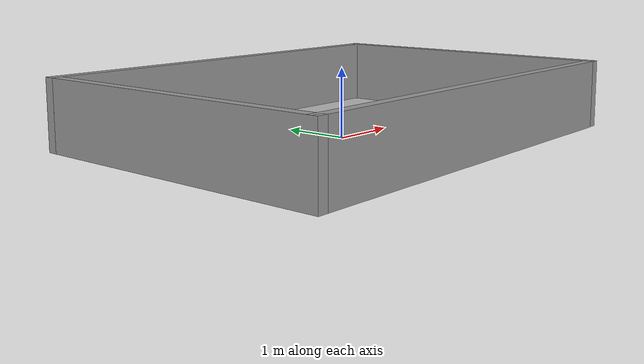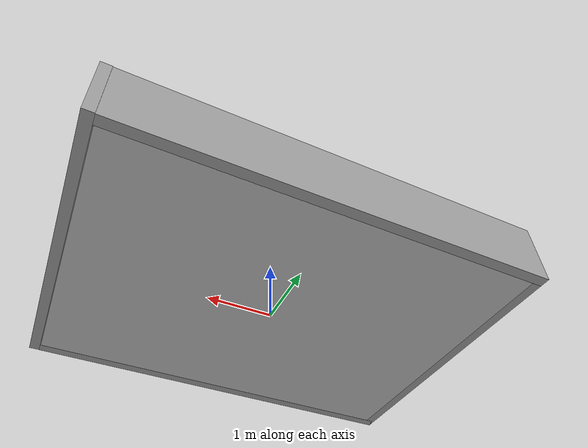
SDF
<?xml version='1.0'?>
<sdf version='1.6'>
  <model name='workshop_small'>

    <link name='Wall_1'>
      <collision name='Wall_1_Collision'>
        <geometry>
          <box>
            <size>6.26 0.15 1</size>
          </box>
        </geometry>
        <pose frame=''>0 0 0.5 0 -0 0</pose>
      </collision>
      <visual name='Wall_1_Visual'>
        <pose frame=''>0 0 0.5 0 -0 0</pose>
        <geometry>
          <box>
            <size>6.26 0.15 1</size>
          </box>
        </geometry>
        <material>
          <script>
            <uri>file://media/materials/scripts/gazebo.material</uri>
            <name>Gazebo/Grey</name>
          </script>
          <ambient>0 0 0 1</ambient>
        </material>
      </visual>
      <pose frame=''>-0.0745 2.24856 0 0 0 0</pose>
    </link>

    <link name='Wall_2'>
      <collision name='Wall_2_Collision'>
        <geometry>
          <box>
            <size>4.68 0.15 1</size>
          </box>
        </geometry>
        <pose frame=''>0 0 0.5 0 -0 0</pose>
      </collision>
      <visual name='Wall_2_Visual'>
        <pose frame=''>0 0 0.5 0 -0 0</pose>
        <geometry>
          <box>
            <size>4.68 0.15 1</size>
          </box>
        </geometry>
        <material>
          <script>
            <uri>file://media/materials/scripts/gazebo.material</uri>
            <name>Gazebo/Grey</name>
          </script>
          <ambient>0 0 0 1</ambient>
        </material>
      </visual>
      <pose frame=''>3.1295 -0.01 0 0 0 -1.5708</pose>
    </link>

    <link name='Wall_3'>
      <collision name='Wall_3_Collision'>
        <geometry>
          <box>
            <size>4.557060 0.15 1</size>
          </box>
        </geometry>
        <pose frame=''>0 0 0.5 0 -0 0</pose>
      </collision>
      <visual name='Wall_3_Visual'>
        <pose frame=''>0 0 0.5 0 -0 0</pose>
        <geometry>
          <box>
            <size>4.557060 0.15 1</size>
          </box>
        </geometry>
        <material>
          <script>
            <uri>file://media/materials/scripts/gazebo.material</uri>
            <name>Gazebo/Grey</name>
          </script>
          <ambient>0 0 0 1</ambient>
        </material>
      </visual>
      <pose frame=''>-3.129500 -0.075000 0 0 0 -1.5708</pose>
    </link>

    <link name='Wall_4'>
      <collision name='Wall_4_Collision'>
        <geometry>
          <box>
            <size>6.26 0.15 1</size>
          </box>
        </geometry>
        <pose frame=''>0 0 0.5 0 -0 0</pose>
      </collision>
      <visual name='Wall_4_Visual'>
        <pose frame=''>0 0 0.5 0 -0 0</pose>
        <geometry>
          <box>
            <size>6.26 0.15 1</size>
          </box>
        </geometry>
        <material>
          <script>
            <uri>file://media/materials/scripts/gazebo.material</uri>
            <name>Gazebo/Grey</name>
          </script>
          <ambient>0 0 0 1</ambient>
        </material>
      </visual>
      <pose frame=''>-0.0745 -2.278500 0 0 0 0</pose>
    </link>

    <link name='Floor'>
      <collision name='Floor_Collision'>
        <geometry>
          <box>
            <size>6.099 4.38 0.013</size>
          </box>
        </geometry>
        <pose frame=''>0 0 0.0065 0 0 0</pose>
	 <surface>
          <friction>
            <ode>
              <mu>1</mu>
              <mu2>1</mu2>
            </ode>
          </friction>
	<bounce/>
            <contact>
              <ode/>
            </contact>
        </surface>
 	<max_contacts>10</max_contacts>
      </collision>
      <visual name='Floor_Visual'>
        <pose frame=''>0 0 0.0065 0 -0 0</pose>
        <geometry>
          <box>
            <size>6.099 4.38 0.013</size>
          </box>
        </geometry>
           <material>
          <script>
            <uri>model://world_workshop_small/materials/scripts</uri>
            <uri>model://world_workshop_small/materials/textures</uri>
            <name>rubber</name>
          </script>
        </material>
      </visual>
      <pose frame=''>-0.005116 -0.013556 0 0 0 0</pose>
        <velocity_decay>
          <linear>0</linear>
          <angular>0</angular>
        </velocity_decay>
        <self_collide>0</self_collide>
        <kinematic>0</kinematic>
        <gravity>1</gravity>
    </link>
    <static>1</static>
  </model>
</sdf>
